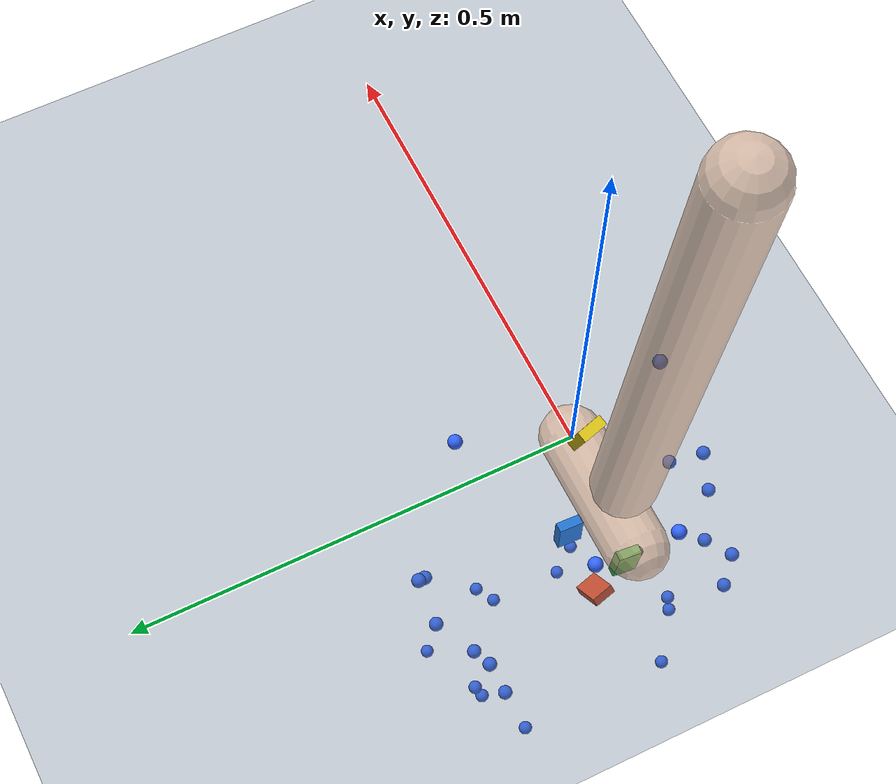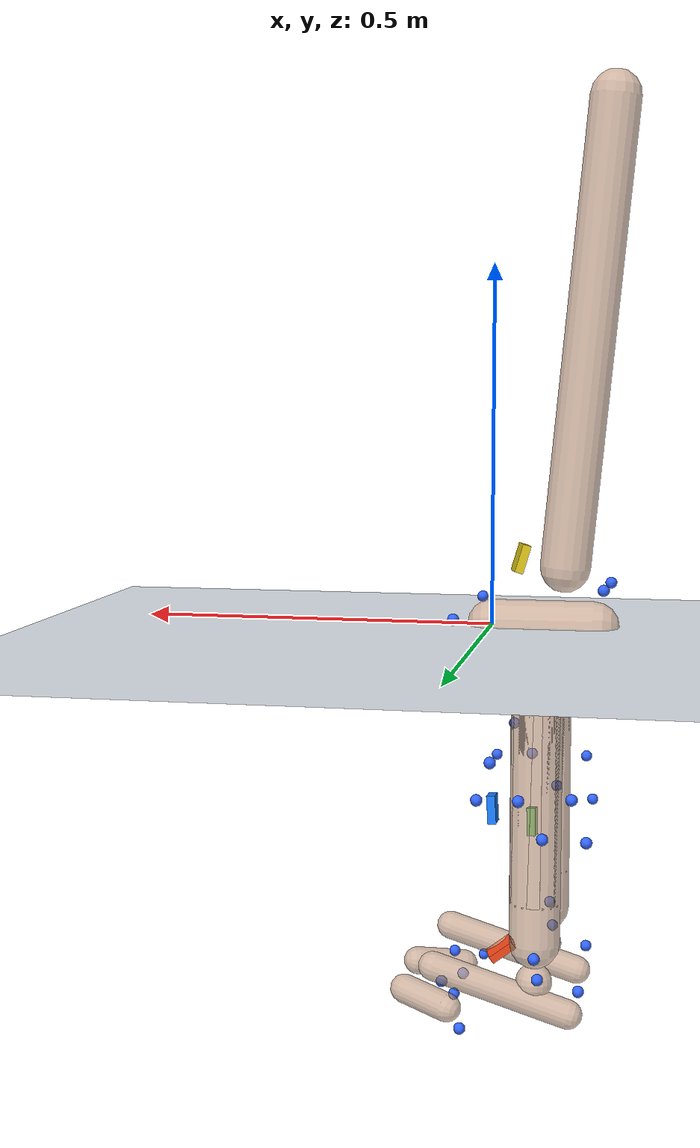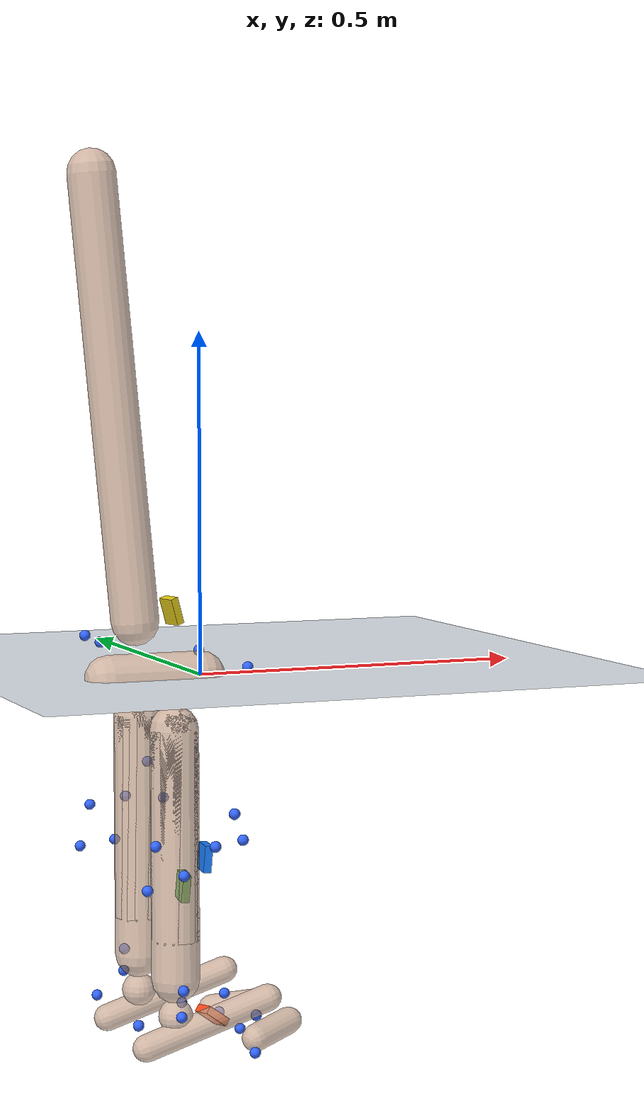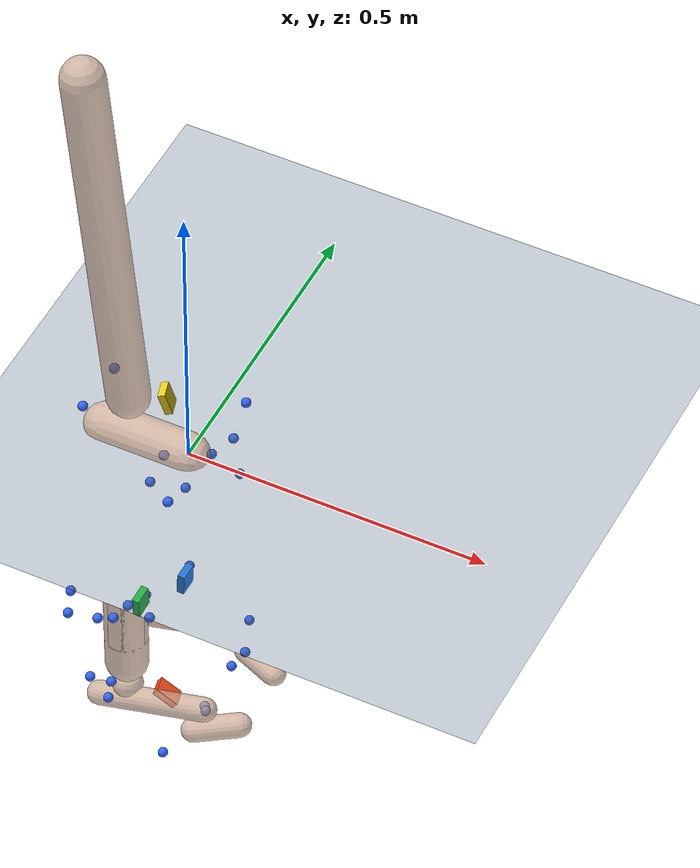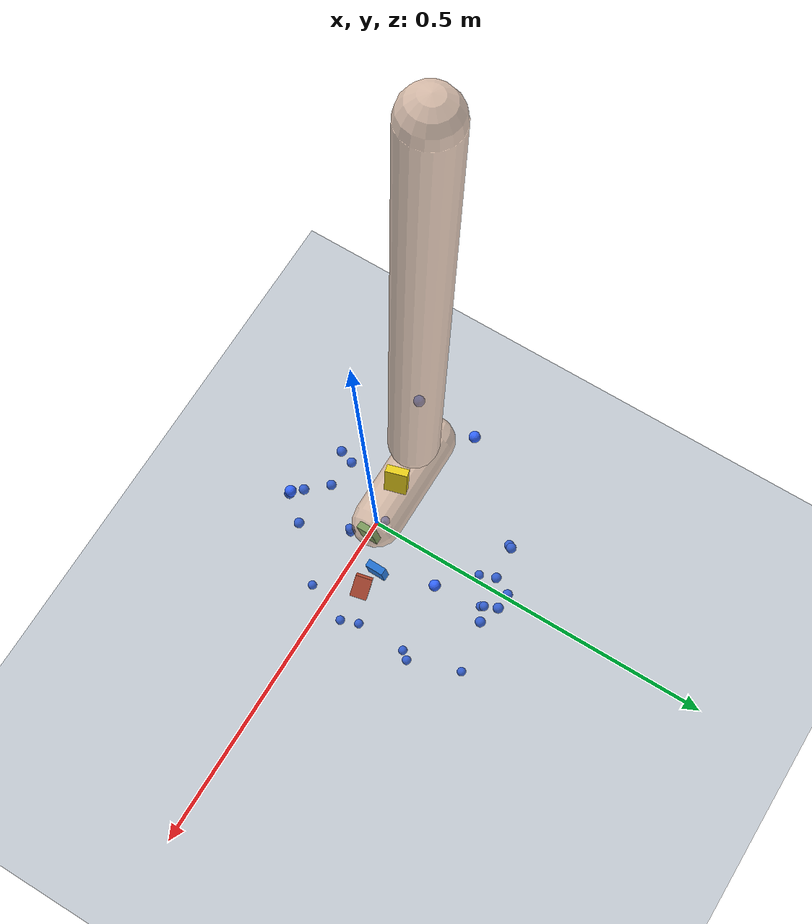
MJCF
<mujoco model="AB21">
  <compiler angle="radian" autolimits="true"/>
  <option timestep="0.005" gravity="0 0 -9.81"><flag contact="disable"/></option>
  <visual><global offwidth="1280" offheight="720"/></visual>
  <default><joint limited="false" damping="0"/><geom contype="0" conaffinity="0"/></default>
  <asset>
    <texture name="grid" type="2d" builtin="checker" rgb1="0.2 0.3 0.4" rgb2="0.3 0.4 0.5" width="512" height="512"/>
    <material name="grid" texture="grid" texrepeat="2 2" texuniform="true"/>
    <material name="skin" rgba="0.8 0.65 0.55 0.7"/>
  </asset>
  <worldbody>
    <light pos="0 0 4" dir="0 0 -1"/>
    <geom name="floor" type="plane" size="0 0 0.05" material="grid"/>
    <body name="pelvis" pos="0 0 0" quat="1 0 0 0">
      <joint name="pelvis_tx" type="slide" axis="1 0 0"/>
      <joint name="pelvis_ty" type="slide" axis="0 0 1"/>
      <joint name="pelvis_tz" type="slide" axis="0 -1 0"/>
      <joint name="pelvis_tilt" type="hinge" axis="0 -1 0"/>
      <joint name="pelvis_list" type="hinge" axis="1 0 0"/>
      <joint name="pelvis_rotation" type="hinge" axis="0 0 1"/>
      <inertial pos="-0.0707 0 0" mass="9.66417" diaginertia="0.096641693 0.096641693 0.096641693"/>
      <geom type="capsule" fromto="0 0 0 -0.1414 0 0" size="0.035" material="skin" mass="0"/>
      <site name="m_R_ASIS" pos="0.0279109 -0.11935242 0.023102941" size="0.008" rgba="0.2 0.4 1 1" group="2"/>
      <site name="m_L_ASIS" pos="0.039468074 0.11726658 0.021039981" size="0.008" rgba="0.2 0.4 1 1" group="2"/>
      <site name="m_L_PSIS" pos="-0.15723987 0.060651425 0.057657573" size="0.008" rgba="0.2 0.4 1 1" group="2"/>
      <site name="m_R_PSIS" pos="-0.16299944 -0.030730011 0.058019589" size="0.008" rgba="0.2 0.4 1 1" group="2"/>
      <body name="femur_r" pos="-0.0707 -0.0835 -0.0661" quat="1 0 0 0">
        <joint name="hip_flexion_r" type="hinge" axis="0 -1 0"/>
        <joint name="hip_adduction_r" type="hinge" axis="1 0 0"/>
        <joint name="hip_rotation_r" type="hinge" axis="0 0 1"/>
        <inertial pos="0 0 -0.15251744" mass="7.6327" diaginertia="0.076326997 0.076326997 0.076326997"/>
        <geom type="capsule" fromto="0 0 0 0 0 -0.30503488" size="0.035" material="skin" mass="0"/>
        <site name="m_R_Thigh_Upper" pos="0.056327767 -0.093128711 -0.11029452" size="0.008" rgba="0.2 0.4 1 1" group="2"/>
        <site name="m_R_Thigh_Front" pos="0.078951095 -0.066898076 -0.15386865" size="0.008" rgba="0.2 0.4 1 1" group="2"/>
        <site name="m_R_Thigh_Rear" pos="0.028642485 -0.090732659 -0.15548987" size="0.008" rgba="0.2 0.4 1 1" group="2"/>
        <site name="m_R_Knee_Lat" pos="-0.0040239363 -0.045599707 -0.36997076" size="0.008" rgba="0.2 0.4 1 1" group="2"/>
        <site name="imu_thigh" type="box" size="0.02 0.015 0.006" pos="0.070192624 0.066793733 -0.20267573" quat="0.68195819 0.024112251 0.73095786 0.007227053" rgba="0.1 0.5 1 1" group="1"/>
        <body name="tibia_r" pos="0 0 0" quat="1 0 0 0">
          <joint name="knee_r_translation1" type="slide" axis="1 0 0"/>
          <joint name="knee_r_translation2" type="slide" axis="0 0 1"/>
          <joint name="knee_angle_r" type="hinge" axis="0 -1 0"/>
          <inertial pos="0 0 -0.18127775" mass="3.04236" diaginertia="0.030423629 0.030423629 0.030423629"/>
          <geom type="capsule" fromto="0 0 0 0 0 -0.36255549" size="0.035" material="skin" mass="0"/>
          <site name="m_R_Shank_Upper" pos="-0.054113278 -0.073733299 -0.15214398" size="0.008" rgba="0.2 0.4 1 1" group="2"/>
          <site name="m_R_Shank_Front" pos="-0.010707813 -0.069509584 -0.19826869" size="0.008" rgba="0.2 0.4 1 1" group="2"/>
          <site name="m_R_Shank_Rear" pos="-0.064336188 -0.067138106 -0.21573565" size="0.008" rgba="0.2 0.4 1 1" group="2"/>
          <site name="m_R_Ankle_Lat" pos="-0.0082963271 -0.049334227 -0.40674132" size="0.008" rgba="0.2 0.4 1 1" group="2"/>
          <site name="imu_shank" type="box" size="0.02 0.015 0.006" pos="0.018055758 0.016538886 -0.23193629" quat="0.69052889 0.067845175 0.71892056 0.04147418" rgba="0.1 0.8 0.2 1" group="1"/>
          <body name="talus_r" pos="0 0 -0.41751168" quat="1 0 0 0">
            <joint name="ankle_angle_r" type="hinge" axis="-0.10501355 -0.97912632 -0.17402245"/>
            <inertial pos="0 0 0" mass="0.0820597" diaginertia="0.00082059686 0.00082059686 0.00082059686"/>
            <geom type="sphere" size="0.025" material="skin" mass="0"/>
            <body name="calcn_r" pos="-0.047353592 -0.0076899826 -0.040731663" quat="1 0 0 0">
              <joint name="subtalar_angle_r" type="hinge" axis="0.78717961 0.12094949 0.60474746"/>
              <inertial pos="0.09348784 0 0.028046352" mass="1.02575" diaginertia="0.010257461 0.010257461 0.010257461"/>
              <geom type="capsule" fromto="0 0 0 0.18697568 0 0.056092704" size="0.02" material="skin" mass="0"/>
              <site name="m_R_Heel" pos="-0.013106287 -0.0042593424 0.03564055" size="0.008" rgba="0.2 0.4 1 1" group="2"/>
              <site name="m_R_Toe_Lat" pos="0.14391947 -0.059942662 -0.0064262944" size="0.008" rgba="0.2 0.4 1 1" group="2"/>
              <site name="m_R_Toe_Med" pos="0.16185082 0.048525901 4.3160098e-05" size="0.008" rgba="0.2 0.4 1 1" group="2"/>
              <site name="m_R_Toe_Tip" pos="0.17737545 0.022375265 0.02467927" size="0.008" rgba="0.2 0.4 1 1" group="2"/>
              <site name="imu_foot" type="box" size="0.02 0.015 0.006" pos="0.10915857 0.023153427 0.031976919" quat="0.94429153 -0.08260766 0.30356449 0.096633731" rgba="1 0.3 0.1 1" group="1"/>
              <body name="toes_r" pos="0.16715626 -0.0010096687 -0.0018697568" quat="1 0 0 0">
                <joint name="mtp_angle_r" type="hinge" axis="-0.5809544 -0.81393611 0"/>
                <inertial pos="0.032346793 0.016360372 0.0056092704" mass="0.177741" diaginertia="0.0017774128 0.0017774128 0.0017774128"/>
                <geom type="capsule" fromto="0 0 0 0.064693585 0.032720744 0.011218541" size="0.02" material="skin" mass="0"/>
              </body>
            </body>
          </body>
        </body>
      </body>
      <body name="femur_l" pos="-0.0707 0.0835 -0.0661" quat="1 0 0 0">
        <joint name="hip_flexion_l" type="hinge" axis="0 -1 0"/>
        <joint name="hip_adduction_l" type="hinge" axis="-1 0 0"/>
        <joint name="hip_rotation_l" type="hinge" axis="0 0 -1"/>
        <inertial pos="0 0 -0.15251744" mass="7.6327" diaginertia="0.076326997 0.076326997 0.076326997"/>
        <geom type="capsule" fromto="0 0 0 0 0 -0.30503488" size="0.035" material="skin" mass="0"/>
        <site name="m_L_Thigh_Upper" pos="0.051152822 0.10429054 -0.090116287" size="0.008" rgba="0.2 0.4 1 1" group="2"/>
        <site name="m_L_Thigh_Front" pos="0.070697774 0.086766379 -0.14509618" size="0.008" rgba="0.2 0.4 1 1" group="2"/>
        <site name="m_L_Thigh_Rear" pos="0.014007228 0.1006137 -0.14071983" size="0.008" rgba="0.2 0.4 1 1" group="2"/>
        <site name="m_L_Knee_Lat" pos="-0.0044970104 0.054475675 -0.36739359" size="0.008" rgba="0.2 0.4 1 1" group="2"/>
        <body name="tibia_l" pos="0 0 0" quat="1 0 0 0">
          <joint name="knee_l_translation1" type="slide" axis="1 0 0"/>
          <joint name="knee_l_translation2" type="slide" axis="0 0 1"/>
          <joint name="knee_angle_l" type="hinge" axis="0 -1 0"/>
          <inertial pos="0 0 -0.18127775" mass="3.04236" diaginertia="0.030423629 0.030423629 0.030423629"/>
          <geom type="capsule" fromto="0 0 0 0 0 -0.36255549" size="0.035" material="skin" mass="0"/>
          <site name="m_L_Shank_Upper" pos="-0.053086356 0.067550916 -0.14384293" size="0.008" rgba="0.2 0.4 1 1" group="2"/>
          <site name="m_L_Shank_Front" pos="-0.01488433 0.066050249 -0.1995567" size="0.008" rgba="0.2 0.4 1 1" group="2"/>
          <site name="m_L_Shank_Rear" pos="-0.072413895 0.055816907 -0.20373716" size="0.008" rgba="0.2 0.4 1 1" group="2"/>
          <site name="m_L_Ankle_Lat" pos="-0.0085227098 0.046205739 -0.39875381" size="0.008" rgba="0.2 0.4 1 1" group="2"/>
          <body name="talus_l" pos="0 0 -0.41751168" quat="1 0 0 0">
            <joint name="ankle_angle_l" type="hinge" axis="0.10501355 -0.97912632 0.17402245"/>
            <inertial pos="0 0 0" mass="0.0820597" diaginertia="0.00082059686 0.00082059686 0.00082059686"/>
            <geom type="sphere" size="0.025" material="skin" mass="0"/>
            <body name="calcn_l" pos="-0.047353592 0.0076899826 -0.040731663" quat="1 0 0 0">
              <joint name="subtalar_angle_l" type="hinge" axis="-0.78717961 0.12094949 -0.60474746"/>
              <inertial pos="0.09348784 0 0.028046352" mass="1.02575" diaginertia="0.010257461 0.010257461 0.010257461"/>
              <geom type="capsule" fromto="0 0 0 0.18697568 0 0.056092704" size="0.02" material="skin" mass="0"/>
              <site name="m_L_Heel" pos="-0.014195994 0.004869733 0.034813855" size="0.008" rgba="0.2 0.4 1 1" group="2"/>
              <site name="m_L_Toe_Lat" pos="0.14078318 0.062848401 -0.0063003657" size="0.008" rgba="0.2 0.4 1 1" group="2"/>
              <site name="m_L_Toe_Med" pos="0.16280221 -0.042617362 0.0023986994" size="0.008" rgba="0.2 0.4 1 1" group="2"/>
              <site name="m_L_Toe_Tip" pos="0.17808207 -0.024787572 0.025649741" size="0.008" rgba="0.2 0.4 1 1" group="2"/>
              <body name="toes_l" pos="0.16715626 0.0010096687 -0.0018697568" quat="1 0 0 0">
                <joint name="mtp_angle_l" type="hinge" axis="0.5809544 -0.81393611 0"/>
                <inertial pos="0.032346793 -0.016360372 0.0056092704" mass="0.177741" diaginertia="0.0017774128 0.0017774128 0.0017774128"/>
                <geom type="capsule" fromto="0 0 0 0.064693585 -0.032720744 0.011218541" size="0.02" material="skin" mass="0"/>
              </body>
            </body>
          </body>
        </body>
      </body>
      <body name="torso" pos="-0.1007 0 0.0815" quat="1 0 0 0">
        <joint name="lumbar_extension" type="hinge" axis="0 -1 0"/>
        <joint name="lumbar_bending" type="hinge" axis="1 0 0"/>
        <joint name="lumbar_rotation" type="hinge" axis="0 0 1"/>
        <inertial pos="-0.03 0 0.32" mass="28.0944" diaginertia="0.28094447 0.28094447 0.28094447"/>
        <geom type="capsule" fromto="0 0 0 -0.06 0 0.64" size="0.035" material="skin" mass="0"/>
        <site name="imu_trunk" type="box" size="0.02 0.015 0.006" pos="0.060288043 0.011101265 0.012901728" quat="0.79525699 -0.082480332 0.5896771 0.11421133" rgba="0.9 0.8 0.1 1" group="1"/>
      </body>
    </body>
  </worldbody>
  <sensor>
<accelerometer name="imu_foot_acc" site="imu_foot"/>
<gyro name="imu_foot_gyr" site="imu_foot"/>
<accelerometer name="imu_shank_acc" site="imu_shank"/>
<gyro name="imu_shank_gyr" site="imu_shank"/>
<accelerometer name="imu_thigh_acc" site="imu_thigh"/>
<gyro name="imu_thigh_gyr" site="imu_thigh"/>
<accelerometer name="imu_trunk_acc" site="imu_trunk"/>
<gyro name="imu_trunk_gyr" site="imu_trunk"/>
</sensor>
</mujoco>
